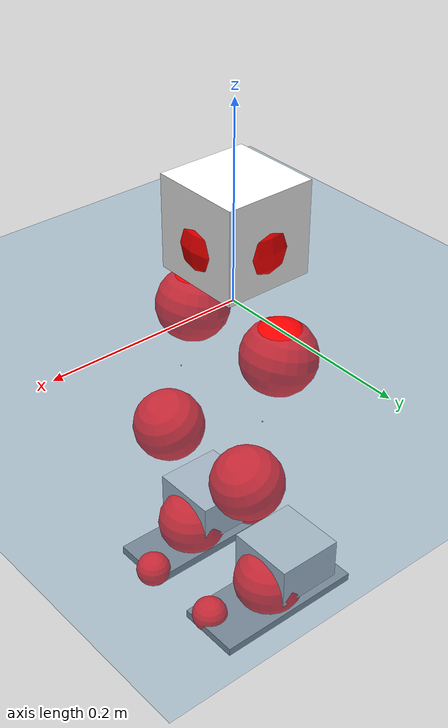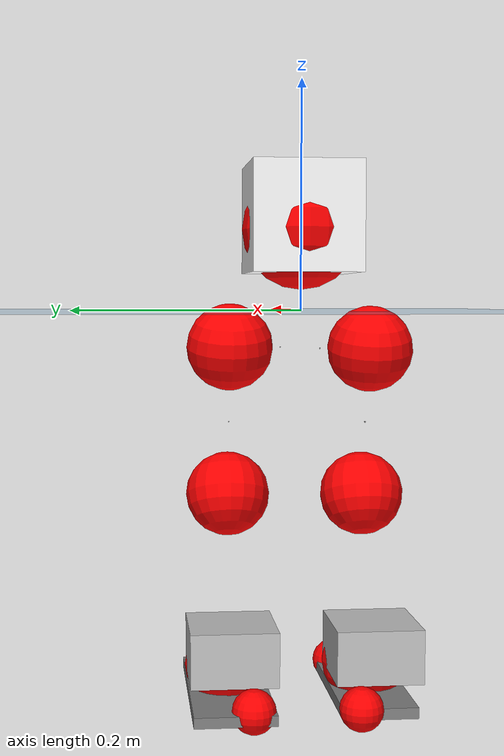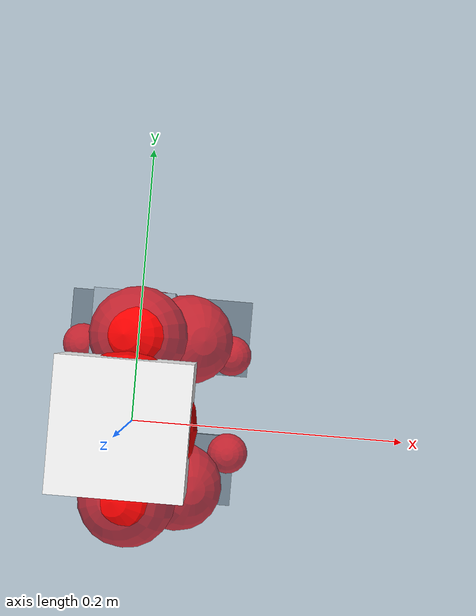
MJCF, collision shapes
<mujoco model="pi_12dof_release_v1">
  <compiler angle="radian" assetdir="assets" balanceinertia="true" inertiafromgeom="false"/>

  <option timestep="0.005" density="1.2" viscosity="2e-05"/>

  <size nkey="1"/>

  <visual>
    <quality shadowsize="8192"/>
    <map shadowclip="0.5"/>
  </visual>

  <default>
    <default class="/">
      <joint armature="0.01" damping="0.01" frictionloss="0.01"/>
      <geom contype="0" conaffinity="0" group="1" solref="-1000 -80"/>
      <site size="0.01 0.005 0.005" group="5"/>
      <general forcelimited="true" biastype="affine" gainprm="20" biasprm="0 -20 -0.5"/>
      <default class="foot">
        <geom size="0.0845 0.036 0.005" type="box" condim="6" group="4" priority="1" friction="0.9 0.2 0.2" solimp="0.015 1 0.005"/>
      </default>
      <default class="reward_collision_sphere">
        <geom group="5" rgba="1 0 0 1"/>
      </default>
    </default>
  </default>

  <asset>
    <texture type="skybox" colorspace="auto" name="//unnamed_texture_0" builtin="gradient" rgb1="0.95 0.95 0.95" rgb2="0.95 0.95 0.95" width="100" height="600"/>
    <texture type="2d" colorspace="auto" name="texplane" builtin="checker" rgb1="0.345 0.575 0.748" rgb2="0.345 0.575 0.748" markrgb="1 1 1" width="512" height="512"/>
    <material name="MatPlane" class="/" texture="texplane" texuniform="true" texrepeat="2 2" specular="0.9"/>
    <mesh name="baselink_1" class="/" file="baselink_1.STL"/>
    <mesh name="r_hip_pitch_link" class="/" file="r_hip_pitch_link.STL"/>
    <mesh name="r_hip_roll_link" class="/" file="r_hip_roll_link.STL"/>
    <mesh name="r_thigh_link" class="/" file="r_thigh_link.STL"/>
    <mesh name="r_calf_link" class="/" file="r_calf_link.STL"/>
    <mesh name="r_ankle_pitch_link" class="/" file="r_ankle_pitch_link.STL"/>
    <mesh name="r_ankle_roll_link" class="/" file="r_ankle_roll_link.STL"/>
    <mesh name="l_hip_pitch_link" class="/" file="l_hip_pitch_link.STL"/>
    <mesh name="l_hip_roll_link" class="/" file="l_hip_roll_link.STL"/>
    <mesh name="l_thigh_link" class="/" file="l_thigh_link.STL"/>
    <mesh name="l_calf_link" class="/" file="l_calf_link.STL"/>
    <mesh name="l_ankle_pitch_link" class="/" file="l_ankle_pitch_link.STL"/>
    <mesh name="l_ankle_roll_link" class="/" file="l_ankle_roll_link.STL"/>
  </asset>

  <worldbody>
    <geom name="floor" class="/" size="100 100 0.125" type="plane" group="0" material="MatPlane"/>
    <light name="toplight_shadow" class="/" pos="0 0 5" dir="0.0990148 0.0990148 -0.990148" type="directional" ambient="0.04 0.04 0.04" diffuse="0.55 0.55 0.55" specular="0.12 0.12 0.12"/>
    <light name="toplight_fill" class="/" pos="0 0 5" dir="0.0990148 0.0990148 -0.990148" type="directional" castshadow="false" ambient="0.04 0.04 0.04" diffuse="0.3 0.3 0.3" specular="0.08 0.08 0.08"/>
    <body name="trunk" pos="-0.0014744 0.000329971 0.000834205" quat="1 -3.01099e-05 0.000176565 1.38416e-05">
      <inertial pos="0.000630635 -7.74628e-06 0.0400687" quat="0.695679 0.0113064 0.00579022 0.718241" mass="1.78008" diaginertia="0.0111531 0.00302711 0.00393206"/>
      <joint name="//unnamed_joint_0" type="free"/>
      <geom name="//unnamed_geom_1" class="/" type="mesh" density="0" rgba="1 1 1 1" mesh="baselink_1"/>
      <geom name="//unnamed_geom_2" class="/" size="0.0469224 0.0469224 0.0469224" pos="0 0 0.0789015" type="box" rgba="1 1 1 1"/>
      <geom name="//unnamed_geom_3" class="reward_collision_sphere" size="0.0516147" pos="0 0 0.0690388"/>
      <site name="imu" class="/" pos="-0.00160315 -0.00360853 0.000814065" size="0.00938448"/>
      <camera name="track" class="/" pos="0 -1.60682 0" quat="0.707107 0.707107 0 0" mode="trackcom"/>
      <camera name="ego_camera" class="/" pos="0.0769248 0 0.177528" quat="-0.5 -0.5 0.5 0.5"/>
      <body name="r_hip_pitch_link" pos="0.000399989 -0.0168687 -0.0336216" quat="0.992261 4.79127e-05 -0.124172 -0.000325784">
        <inertial pos="-0.000678009 -0.0445552 0.00117751" quat="-0.0182612 0.705612 -0.0283433 0.707796" mass="0.306895" diaginertia="0.000123636 3.26398e-05 7.73929e-05"/>
        <joint name="r_hip_pitch_joint" class="/" pos="0 0 0" axis="-0.000766123 -0.99998 0.00625002" range="-1.74643 1.24011" armature="0.00939441" damping="0.0167363" frictionloss="0.00926432"/>
        <geom name="//unnamed_geom_4" class="/" type="mesh" density="0" rgba="0.75294 0.75294 0.75294 1" mesh="r_hip_pitch_link"/>
        <geom name="//unnamed_geom_5" class="/" size="0.000469224 0.000469224 0.000469224" type="box" rgba="0.75294 0.75294 0.75294 1"/>
        <body name="r_hip_roll_link" pos="0.00012491 -0.0446007 -0.000668301" quat="1 -2.44115e-06 2.92804e-06 -1.07954e-06">
          <inertial pos="0.000445238 0.000194338 -0.060098" quat="0.705931 -0.0791268 -0.0825438 0.69899" mass="0.322001" diaginertia="0.00037924 9.32193e-05 0.000121409"/>
          <joint name="r_hip_roll_joint" class="/" pos="0 0 0" axis="-0.999999 0.000484862 -0.000949201" range="-0.12929 0.477109" armature="0.00884563" damping="0.00500081" frictionloss="0.00923057"/>
          <geom name="//unnamed_geom_6" class="/" type="mesh" density="0" rgba="0.75294 0.75294 0.75294 1" mesh="r_hip_roll_link"/>
          <geom name="//unnamed_geom_7" class="/" size="0.000469224 0.000469224 0.000469224" type="box" rgba="0.75294 0.75294 0.75294 1"/>
          <geom name="//unnamed_geom_8" class="reward_collision_sphere" size="0.0375379"/>
          <body name="r_thigh_link" pos="-7.84278e-05 0.000459014 -0.0683368" quat="1 -0.000182332 8.05888e-06 -0.000283918">
            <inertial pos="-0.000271206 7.5679e-05 -0.0468254" quat="0.735399 0.677626 0.0031958 -0.000960057" mass="0.0929286" diaginertia="0.00014283 3.1313e-05 5.44302e-05"/>
            <joint name="r_thigh_joint" class="/" pos="0 0 0" axis="-0.00171279 4.68876e-05 -0.999999" range="-0.302322 0.579842" armature="0.00902132" damping="0" frictionloss="0.00944716"/>
            <geom name="//unnamed_geom_9" class="/" type="mesh" density="0" rgba="0.75294 0.75294 0.75294 1" mesh="r_thigh_link"/>
            <geom name="//unnamed_geom_10" class="/" size="0.000469224 0.000469224 0.000469224" type="box" rgba="0.75294 0.75294 0.75294 1"/>
            <body name="r_calf_link" pos="-8.09601e-05 -0.00043563 -0.0690618" quat="0.947779 -0.000193671 0.318927 -8.07373e-05">
              <inertial pos="-0.000275403 -0.00109242 -0.0688403" quat="0.999978 -0.00349865 0.00094972 0.00563614" mass="0.686793" diaginertia="0.00395227 0.00116233 0.000163479"/>
              <joint name="r_calf_joint" class="/" pos="0 0 0" axis="-0.00129455 -0.999999 0.000697489" stiffness="0.0015677" range="-1.64767 0.632493" armature="0.010337" damping="0" frictionloss="0.0102252"/>
              <geom name="//unnamed_geom_11" class="/" type="mesh" density="0" rgba="0.75294 0.75294 0.75294 1" mesh="r_calf_link"/>
              <geom name="//unnamed_geom_12" class="/" size="0.000469224 0.000469224 0.000469224" type="box" rgba="0.75294 0.75294 0.75294 1"/>
              <geom name="//unnamed_geom_13" class="reward_collision_sphere" size="0.0375379"/>
              <body name="r_ankle_pitch_link" pos="0.000446194 1.70927e-05 -0.137511" quat="0.979991 0.000367663 -0.199042 0.000560521">
                <inertial pos="0.00511092 0.00111523 4.12899e-05" quat="-0.000133943 0.7064 -0.0016182 0.707811" mass="0.143366" diaginertia="0.000353121 7.57973e-05 0.000112369"/>
                <joint name="r_ankle_pitch_joint" class="/" pos="0 0 0" axis="0.010073 -0.999949 -0.000943742" range="-1.30425 0.504409" armature="0.00909617" damping="0.00978998" frictionloss="0.00958744"/>
                <geom name="//unnamed_geom_14" class="/" type="mesh" density="0" rgba="0.75294 0.75294 0.75294 1" mesh="r_ankle_pitch_link"/>
                <geom name="//unnamed_geom_15" class="/" size="0.0365995 0.0375379 0.0234612" type="box" rgba="0.75294 0.75294 0.75294 1"/>
                <body name="r_ankle_roll_link" pos="0.0781191 0.00221662 -0.00049413" quat="1 -5.43916e-05 4.40902e-05 2.99632e-06">
                  <inertial pos="-0.0256176 0.000159997 -0.0142237" quat="0.558017 0.431152 0.433845 0.560806" mass="0.43049" diaginertia="0.00130247 0.000348048 0.000264947"/>
                  <joint name="r_ankle_roll_joint" class="/" pos="0 0 0" axis="-0.999937 -0.0106952 -0.00354176" range="-0.157075 0.141179" armature="0.00957305" damping="0.00613236" frictionloss="0.00932327"/>
                  <geom name="//unnamed_geom_16" class="/" type="mesh" density="0" rgba="0.75294 0.75294 0.75294 1" mesh="r_ankle_roll_link"/>
                  <geom name="//unnamed_geom_17" class="/" type="mesh" rgba="0.75294 0.75294 0.75294 1" mesh="r_ankle_roll_link"/>
                  <geom name="right_foot" class="foot" size="0.073405 0.0322555 0.00478175" pos="-0.0523089 0 -0.0433958"/>
                  <geom name="//unnamed_geom_19" class="reward_collision_sphere" size="0.0375379" pos="-0.0512832 0 -0.0197254"/>
                  <geom name="//unnamed_geom_20" class="reward_collision_sphere" size="0.018769" pos="0.015385 0.0160682 -0.0394508"/>
                  <geom name="//unnamed_geom_21" class="reward_collision_sphere" size="0.018769" pos="-0.12308 0.0160682 -0.0394508"/>
                  <site name="right_foot" class="foot" pos="-0.0523089 0 -0.0433958" size="0.00938448"/>
                </body>
              </body>
            </body>
          </body>
        </body>
      </body>
      <body name="l_hip_pitch_link" pos="0.000170052 0.018062 -0.0324058" quat="0.99231 0.000384272 -0.123776 -0.000419789">
        <inertial pos="0.00233262 0.0433557 -0.000421034" quat="-0.0387705 0.705828 0.0294306 0.706709" mass="0.321933" diaginertia="0.000145367 3.50204e-05 9.3775e-05"/>
        <joint name="l_hip_pitch_joint" class="/" pos="0 0 0" axis="0.00168907 0.999999 -2.43297e-05" stiffness="0.000558328" range="-1.26313 1.74546" armature="0.00941325" damping="0.00235061" frictionloss="0.00895197"/>
        <geom name="//unnamed_geom_22" class="/" type="mesh" density="0" rgba="0.75294 0.75294 0.75294 1" mesh="l_hip_pitch_link"/>
        <geom name="//unnamed_geom_23" class="/" size="0.000469224 0.000469224 0.000469224" type="box" rgba="0.75294 0.75294 0.75294 1"/>
        <body name="l_hip_roll_link" pos="-0.000661112 0.0442477 0.000280577" quat="1 -0.000575438 -2.74346e-05 -0.000224019">
          <inertial pos="-0.00119891 -0.000341817 -0.0606463" quat="0.699086 -0.0712553 -0.0787702 0.707105" mass="0.318906" diaginertia="0.000377077 9.27188e-05 0.000119088"/>
          <joint name="l_hip_roll_joint" class="/" pos="0 0 0" axis="-0.999983 0.00254199 -0.0052652" stiffness="0.0019585" range="-0.492405 0.133505" armature="0.00932651" damping="0" frictionloss="0.00892172"/>
          <geom name="//unnamed_geom_24" class="/" type="mesh" density="0" rgba="0.75294 0.75294 0.75294 1" mesh="l_hip_roll_link"/>
          <geom name="//unnamed_geom_25" class="/" size="0.000469224 0.000469224 0.000469224" type="box" rgba="0.75294 0.75294 0.75294 1"/>
          <geom name="//unnamed_geom_26" class="reward_collision_sphere" size="0.0375379"/>
          <body name="l_thigh_link" pos="0.000530947 -0.000800441 -0.0691046" quat="1 -3.95251e-05 6.26408e-05 -7.31271e-06">
            <inertial pos="0.000404148 -0.00153215 -0.0479975" quat="0.675023 0.737797 0.000621473 -8.38718e-06" mass="0.0935842" diaginertia="0.000141888 3.16385e-05 5.42894e-05"/>
            <joint name="l_thigh_joint" class="/" pos="0 0 0" axis="-0.00039099 -0.00126553 -0.999999" range="-0.60221 0.285677" armature="0.00985061" damping="0.00368105" frictionloss="0.00913762"/>
            <geom name="//unnamed_geom_27" class="/" type="mesh" density="0" rgba="0.75294 0.75294 0.75294 1" mesh="l_thigh_link"/>
            <geom name="//unnamed_geom_28" class="/" size="0.000469224 0.000469224 0.000469224" type="box" rgba="0.75294 0.75294 0.75294 1"/>
            <body name="l_calf_link" pos="0.00010423 -0.000490806 -0.0690204" quat="0.947652 1.68943e-05 0.319306 -5.14378e-06">
              <inertial pos="0.000230818 0.00229258 -0.0691702" quat="0.999943 0.00480048 -0.00242874 0.00926005" mass="0.674019" diaginertia="0.00396486 0.0011647 0.000165069"/>
              <joint name="l_calf_joint" class="/" pos="0 0 0" axis="-0.0015202 0.999998 0.0011119" stiffness="0.00382946" range="-0.659319 1.66302" armature="0.00861253" damping="0.00567343" frictionloss="0.0101101"/>
              <geom name="//unnamed_geom_29" class="/" type="mesh" density="0" rgba="0.75294 0.75294 0.75294 1" mesh="l_calf_link"/>
              <geom name="//unnamed_geom_30" class="/" size="0.000469224 0.000469224 0.000469224" type="box" rgba="0.75294 0.75294 0.75294 1"/>
              <geom name="//unnamed_geom_31" class="reward_collision_sphere" size="0.0375379"/>
              <body name="l_ankle_pitch_link" pos="0.000165813 0.00165235 -0.138416" quat="0.980047 0.000109218 -0.198767 -0.000414305">
                <inertial pos="0.00510172 0.000206166 -0.00039367" quat="-0.00172534 0.70755 0.00161962 0.70666" mass="0.148596" diaginertia="0.00035655 7.47398e-05 0.000111362"/>
                <joint name="l_ankle_pitch_joint" class="/" pos="0 0 0" axis="0.00101894 0.999997 0.00215996" range="-0.510483 1.30166" armature="0.00938473" damping="0.00372501" frictionloss="0.00894665"/>
                <geom name="//unnamed_geom_32" class="/" type="mesh" density="0" rgba="0.75294 0.75294 0.75294 1" mesh="l_ankle_pitch_link"/>
                <geom name="//unnamed_geom_33" class="/" size="0.0365995 0.0375379 0.0234612" type="box" rgba="0.75294 0.75294 0.75294 1"/>
                <body name="l_ankle_roll_link" pos="0.0756349 0.00143278 0.00046608" quat="1 7.26642e-06 4.77207e-05 6.26551e-05">
                  <inertial pos="-0.0234077 4.03651e-05 -0.0152743" quat="0.560284 0.430432 0.437327 0.556376" mass="0.42941" diaginertia="0.00124442 0.000339075 0.000257429"/>
                  <joint name="l_ankle_roll_joint" class="/" pos="0 0 0" axis="-0.999996 -0.0022497 -0.00145491" range="-0.147787 0.150564" armature="0.00936572" damping="0.00312554" frictionloss="0.00938423"/>
                  <geom name="//unnamed_geom_34" class="/" type="mesh" density="0" rgba="0.75294 0.75294 0.75294 1" mesh="l_ankle_roll_link"/>
                  <geom name="//unnamed_geom_35" class="/" type="mesh" rgba="0.75294 0.75294 0.75294 1" mesh="l_ankle_roll_link"/>
                  <geom name="left_foot" class="foot" size="0.0835896 0.0347895 0.00453148" pos="-0.0523089 0 -0.0433958"/>
                  <geom name="//unnamed_geom_37" class="reward_collision_sphere" size="0.0375379" pos="-0.0512832 0 -0.0197254"/>
                  <geom name="//unnamed_geom_38" class="reward_collision_sphere" size="0.018769" pos="0.015385 -0.0160682 -0.0394508"/>
                  <geom name="//unnamed_geom_39" class="reward_collision_sphere" size="0.018769" pos="-0.12308 -0.0160682 -0.0394508"/>
                  <site name="left_foot" class="foot" pos="-0.0523089 0 -0.0433958" size="0.00938448"/>
                </body>
              </body>
            </body>
          </body>
        </body>
      </body>
    </body>
  </worldbody>

  <contact>
    <pair class="/" geom1="floor" geom2="right_foot" name="//unnamed_contact_1"/>
    <pair class="/" geom1="floor" geom2="left_foot" name="//unnamed_contact_0"/>
  </contact>

  <actuator>
    <general name="r_hip_pitch_joint" class="/" joint="r_hip_pitch_joint" forcerange="-19.5307 19.5307" gainprm="19.0997" biasprm="0 -19.0997 -0.483729"/>
    <general name="r_hip_roll_joint" class="/" joint="r_hip_roll_joint" forcerange="-19.8038 19.8038" gainprm="19.0997" biasprm="0 -19.0997 -0.483729"/>
    <general name="r_thigh_joint" class="/" joint="r_thigh_joint" forcerange="-19.7105 19.7105" gainprm="19.0997" biasprm="0 -19.0997 -0.483729"/>
    <general name="r_calf_joint" class="/" joint="r_calf_joint" forcerange="-19.3474 19.3474" gainprm="19.0997" biasprm="0 -19.0997 -0.483729"/>
    <general name="r_ankle_pitch_joint" class="/" joint="r_ankle_pitch_joint" forcerange="-19.9542 19.9542" gainprm="19.0997" biasprm="0 -19.0997 -0.483729"/>
    <general name="r_ankle_roll_joint" class="/" joint="r_ankle_roll_joint" forcerange="-19.3879 19.3879" gainprm="19.0997" biasprm="0 -19.0997 -0.483729"/>
    <general name="l_hip_pitch_joint" class="/" joint="l_hip_pitch_joint" forcerange="-19.9212 19.9212" gainprm="19.0997" biasprm="0 -19.0997 -0.483729"/>
    <general name="l_hip_roll_joint" class="/" joint="l_hip_roll_joint" forcerange="-20.4343 20.4343" gainprm="19.0997" biasprm="0 -19.0997 -0.483729"/>
    <general name="l_thigh_joint" class="/" joint="l_thigh_joint" forcerange="-19.701 19.701" gainprm="19.0997" biasprm="0 -19.0997 -0.483729"/>
    <general name="l_calf_joint" class="/" joint="l_calf_joint" forcerange="-21.0416 21.0416" gainprm="19.0997" biasprm="0 -19.0997 -0.483729"/>
    <general name="l_ankle_pitch_joint" class="/" joint="l_ankle_pitch_joint" forcerange="-19.6586 19.6586" gainprm="19.0997" biasprm="0 -19.0997 -0.483729"/>
    <general name="l_ankle_roll_joint" class="/" joint="l_ankle_roll_joint" forcerange="-19.7273 19.7273" gainprm="19.0997" biasprm="0 -19.0997 -0.483729"/>
  </actuator>

  <sensor>
    <gyro site="imu" name="imu_angular_velocity"/>
    <velocimeter site="imu" name="imu_linear_velocity"/>
    <framelinvel objtype="site" objname="left_foot" name="left_foot_global_linear_velocity"/>
    <framelinvel objtype="site" objname="right_foot" name="right_foot_global_linear_velocity"/>
  </sensor>

  <keyframe>
    <key name="home" qpos="0 0 0.291 1 0 0 0 0.4 0 0 -0.8 0.4 0 -0.4 0 0 0.8 -0.4 0"/>
  </keyframe>
</mujoco>
